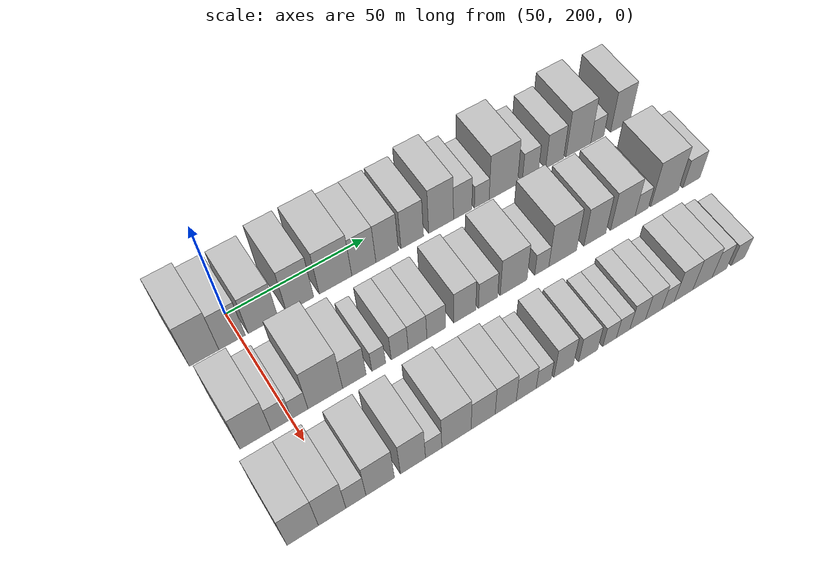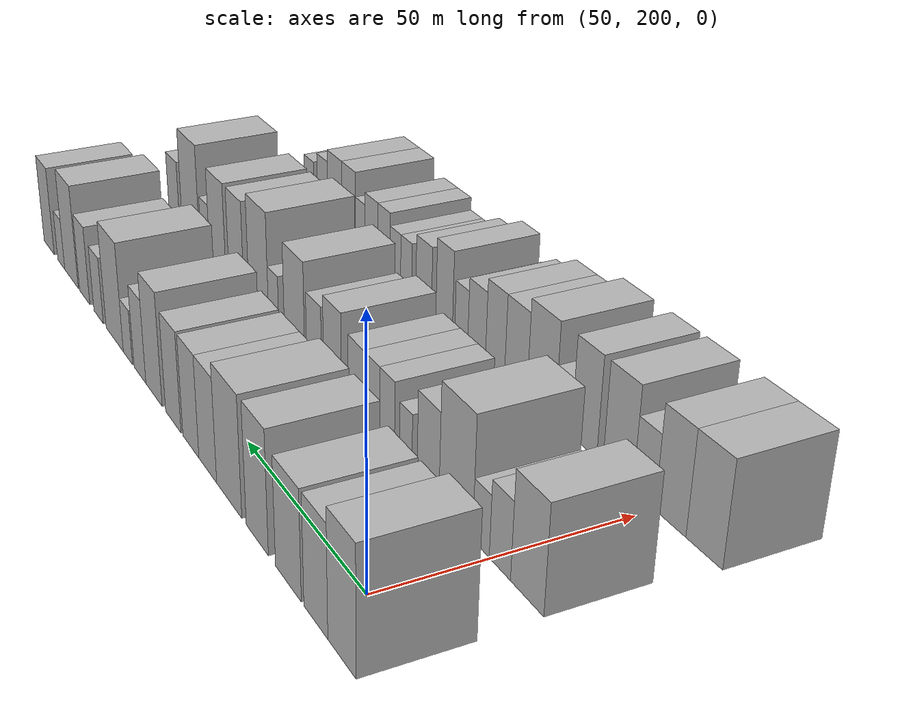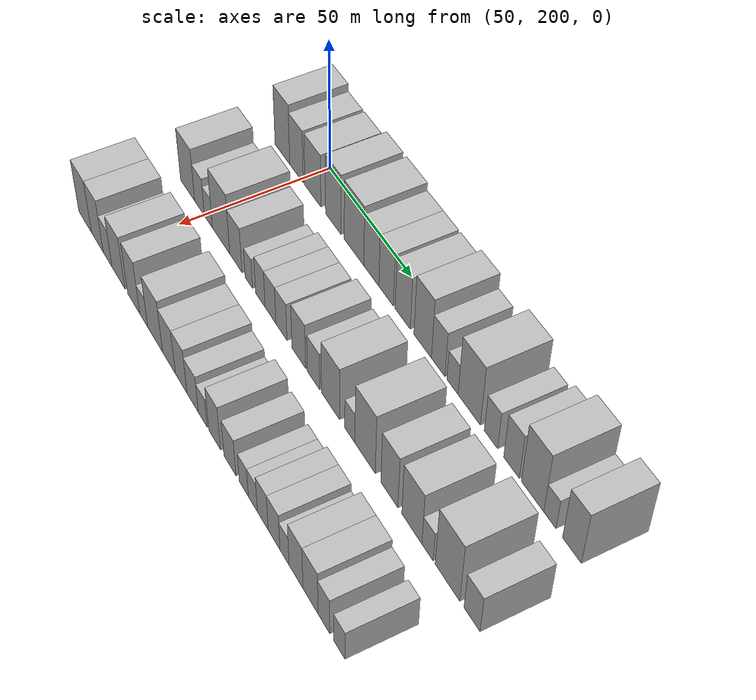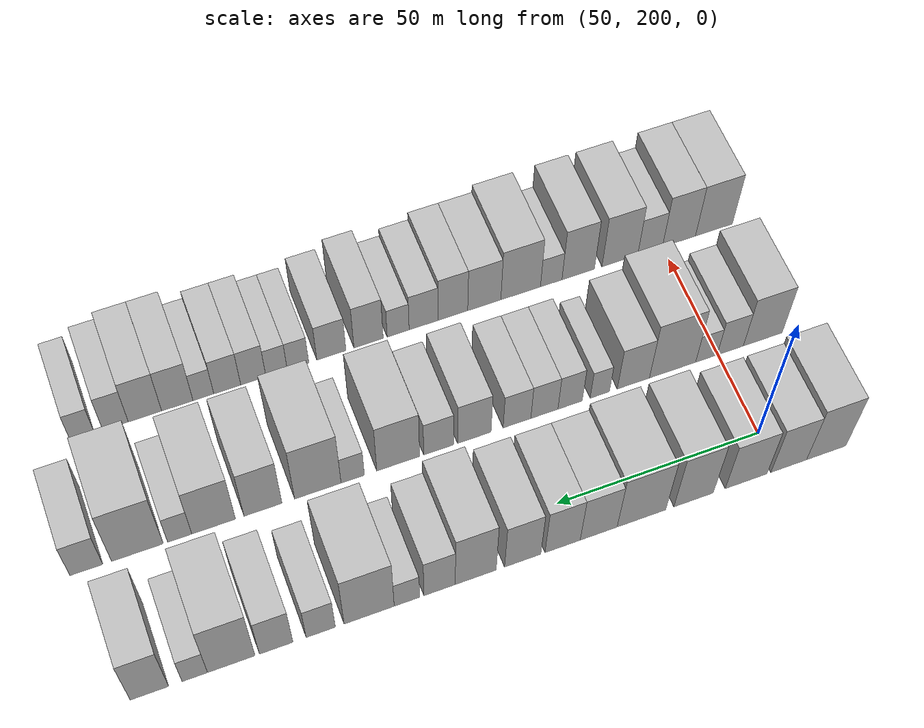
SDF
<sdf version="1.6">
 <world name="default">
  <model name="building_59">
   <static>1</static>
   <pose>50.0000 187.6742 0 0.000000 0.000000 0.000000</pose>
   <link name="link">
    <pose>0 0 12.00 0 0 0</pose>
    <collision name="collision"><geometry><box><size>20.0000 9.9795 24.0000</size></box></geometry></collision>
    <visual name="visual">
     <cast_shadows>0</cast_shadows>
     <geometry><box><size>20.0000 9.9795 24.0000</size></box></geometry>
     <material>
      <script>
       <uri>model://HANNAS_wall/materials/scripts</uri>
       <uri>model://HANNAS_wall/materials/textures</uri>
       <name>vrc/HANNAS_wall</name>
      </script>
     </material>
    </visual>
   </link>
  </model>
  <model name="building_60">
   <static>1</static>
   <pose>50.0000 197.1681 0 0.000000 0.000000 0.000000</pose>
   <link name="link">
    <pose>0 0 10.50 0 0 0</pose>
    <collision name="collision"><geometry><box><size>20.0000 9.0083 21.0000</size></box></geometry></collision>
    <visual name="visual">
     <cast_shadows>0</cast_shadows>
     <geometry><box><size>20.0000 9.0083 21.0000</size></box></geometry>
     <material>
      <script>
       <uri>model://HANNAS_wall/materials/scripts</uri>
       <uri>model://HANNAS_wall/materials/textures</uri>
       <name>vrc/HANNAS_wall</name>
      </script>
     </material>
    </visual>
   </link>
  </model>
  <model name="building_61">
   <static>1</static>
   <pose>50.0000 207.8773 0 0.000000 0.000000 0.000000</pose>
   <link name="link">
    <pose>0 0 10.50 0 0 0</pose>
    <collision name="collision"><geometry><box><size>20.0000 10.4101 21.0000</size></box></geometry></collision>
    <visual name="visual">
     <cast_shadows>0</cast_shadows>
     <geometry><box><size>20.0000 10.4101 21.0000</size></box></geometry>
     <material>
      <script>
       <uri>model://HANNAS_wall/materials/scripts</uri>
       <uri>model://HANNAS_wall/materials/textures</uri>
       <name>vrc/HANNAS_wall</name>
      </script>
     </material>
    </visual>
   </link>
  </model>
  <model name="building_62">
   <static>1</static>
   <pose>50.0000 220.9479 0 0.000000 0.000000 0.000000</pose>
   <link name="link">
    <pose>0 0 12.00 0 0 0</pose>
    <collision name="collision"><geometry><box><size>20.0000 9.7313 24.0000</size></box></geometry></collision>
    <visual name="visual">
     <cast_shadows>0</cast_shadows>
     <geometry><box><size>20.0000 9.7313 24.0000</size></box></geometry>
     <material>
      <script>
       <uri>model://HANNAS_wall/materials/scripts</uri>
       <uri>model://HANNAS_wall/materials/textures</uri>
       <name>vrc/HANNAS_wall</name>
      </script>
     </material>
    </visual>
   </link>
  </model>
  <model name="building_63">
   <static>1</static>
   <pose>50.0000 233.7645 0 0.000000 0.000000 0.000000</pose>
   <link name="link">
    <pose>0 0 12.00 0 0 0</pose>
    <collision name="collision"><geometry><box><size>20.0000 11.9019 24.0000</size></box></geometry></collision>
    <visual name="visual">
     <cast_shadows>0</cast_shadows>
     <geometry><box><size>20.0000 11.9019 24.0000</size></box></geometry>
     <material>
      <script>
       <uri>model://HANNAS_wall/materials/scripts</uri>
       <uri>model://HANNAS_wall/materials/textures</uri>
       <name>vrc/HANNAS_wall</name>
      </script>
     </material>
    </visual>
   </link>
  </model>
  <model name="building_64">
   <static>1</static>
   <pose>50.0000 244.1948 0 0.000000 0.000000 0.000000</pose>
   <link name="link">
    <pose>0 0 10.50 0 0 0</pose>
    <collision name="collision"><geometry><box><size>20.0000 8.9586 21.0000</size></box></geometry></collision>
    <visual name="visual">
     <cast_shadows>0</cast_shadows>
     <geometry><box><size>20.0000 8.9586 21.0000</size></box></geometry>
     <material>
      <script>
       <uri>model://HANNAS_wall/materials/scripts</uri>
       <uri>model://HANNAS_wall/materials/textures</uri>
       <name>vrc/HANNAS_wall</name>
      </script>
     </material>
    </visual>
   </link>
  </model>
  <model name="building_65">
   <static>1</static>
   <pose>50.0000 252.9122 0 0.000000 0.000000 0.000000</pose>
   <link name="link">
    <pose>0 0 10.50 0 0 0</pose>
    <collision name="collision"><geometry><box><size>20.0000 8.4762 21.0000</size></box></geometry></collision>
    <visual name="visual">
     <cast_shadows>0</cast_shadows>
     <geometry><box><size>20.0000 8.4762 21.0000</size></box></geometry>
     <material>
      <script>
       <uri>model://HANNAS_wall/materials/scripts</uri>
       <uri>model://HANNAS_wall/materials/textures</uri>
       <name>vrc/HANNAS_wall</name>
      </script>
     </material>
    </visual>
   </link>
  </model>
  <model name="building_66">
   <static>1</static>
   <pose>50.0000 262.4723 0 0.000000 0.000000 0.000000</pose>
   <link name="link">
    <pose>0 0 10.50 0 0 0</pose>
    <collision name="collision"><geometry><box><size>20.0000 8.6439 21.0000</size></box></geometry></collision>
    <visual name="visual">
     <cast_shadows>0</cast_shadows>
     <geometry><box><size>20.0000 8.6439 21.0000</size></box></geometry>
     <material>
      <script>
       <uri>model://HANNAS_wall/materials/scripts</uri>
       <uri>model://HANNAS_wall/materials/textures</uri>
       <name>vrc/HANNAS_wall</name>
      </script>
     </material>
    </visual>
   </link>
  </model>
  <model name="building_67">
   <static>1</static>
   <pose>50.0000 273.6361 0 0.000000 0.000000 0.000000</pose>
   <link name="link">
    <pose>0 0 12.00 0 0 0</pose>
    <collision name="collision"><geometry><box><size>20.0000 9.6837 24.0000</size></box></geometry></collision>
    <visual name="visual">
     <cast_shadows>0</cast_shadows>
     <geometry><box><size>20.0000 9.6837 24.0000</size></box></geometry>
     <material>
      <script>
       <uri>model://HANNAS_wall/materials/scripts</uri>
       <uri>model://HANNAS_wall/materials/textures</uri>
       <name>vrc/HANNAS_wall</name>
      </script>
     </material>
    </visual>
   </link>
  </model>
  <model name="building_68">
   <static>1</static>
   <pose>50.0000 282.1421 0 0.000000 0.000000 0.000000</pose>
   <link name="link">
    <pose>0 0 9.00 0 0 0</pose>
    <collision name="collision"><geometry><box><size>20.0000 7.3284 18.0000</size></box></geometry></collision>
    <visual name="visual">
     <cast_shadows>0</cast_shadows>
     <geometry><box><size>20.0000 7.3284 18.0000</size></box></geometry>
     <material>
      <script>
       <uri>model://HANNAS_wall/materials/scripts</uri>
       <uri>model://HANNAS_wall/materials/textures</uri>
       <name>vrc/HANNAS_wall</name>
      </script>
     </material>
    </visual>
   </link>
  </model>
  <model name="building_69">
   <static>1</static>
   <pose>50.0000 289.7700 0 0.000000 0.000000 0.000000</pose>
   <link name="link">
    <pose>0 0 6.00 0 0 0</pose>
    <collision name="collision"><geometry><box><size>20.0000 5.9274 12.0000</size></box></geometry></collision>
    <visual name="visual">
     <cast_shadows>0</cast_shadows>
     <geometry><box><size>20.0000 5.9274 12.0000</size></box></geometry>
     <material>
      <script>
       <uri>model://HANNAS_wall/materials/scripts</uri>
       <uri>model://HANNAS_wall/materials/textures</uri>
       <name>vrc/HANNAS_wall</name>
      </script>
     </material>
    </visual>
   </link>
  </model>
  <model name="building_70">
   <static>1</static>
   <pose>50.0000 298.5270 0 0.000000 0.000000 0.000000</pose>
   <link name="link">
    <pose>0 0 12.00 0 0 0</pose>
    <collision name="collision"><geometry><box><size>20.0000 11.5866 24.0000</size></box></geometry></collision>
    <visual name="visual">
     <cast_shadows>0</cast_shadows>
     <geometry><box><size>20.0000 11.5866 24.0000</size></box></geometry>
     <material>
      <script>
       <uri>model://HANNAS_wall/materials/scripts</uri>
       <uri>model://HANNAS_wall/materials/textures</uri>
       <name>vrc/HANNAS_wall</name>
      </script>
     </material>
    </visual>
   </link>
  </model>
  <model name="building_71">
   <static>1</static>
   <pose>50.0000 309.6688 0 0.000000 0.000000 0.000000</pose>
   <link name="link">
    <pose>0 0 7.50 0 0 0</pose>
    <collision name="collision"><geometry><box><size>20.0000 6.6970 15.0000</size></box></geometry></collision>
    <visual name="visual">
     <cast_shadows>0</cast_shadows>
     <geometry><box><size>20.0000 6.6970 15.0000</size></box></geometry>
     <material>
      <script>
       <uri>model://HANNAS_wall/materials/scripts</uri>
       <uri>model://HANNAS_wall/materials/textures</uri>
       <name>vrc/HANNAS_wall</name>
      </script>
     </material>
    </visual>
   </link>
  </model>
  <model name="building_72">
   <static>1</static>
   <pose>50.0000 319.8242 0 0.000000 0.000000 0.000000</pose>
   <link name="link">
    <pose>0 0 9.00 0 0 0</pose>
    <collision name="collision"><geometry><box><size>20.0000 7.6137 18.0000</size></box></geometry></collision>
    <visual name="visual">
     <cast_shadows>0</cast_shadows>
     <geometry><box><size>20.0000 7.6137 18.0000</size></box></geometry>
     <material>
      <script>
       <uri>model://HANNAS_wall/materials/scripts</uri>
       <uri>model://HANNAS_wall/materials/textures</uri>
       <name>vrc/HANNAS_wall</name>
      </script>
     </material>
    </visual>
   </link>
  </model>
  <model name="building_73">
   <static>1</static>
   <pose>50.0000 329.9711 0 0.000000 0.000000 0.000000</pose>
   <link name="link">
    <pose>0 0 12.00 0 0 0</pose>
    <collision name="collision"><geometry><box><size>20.0000 10.6802 24.0000</size></box></geometry></collision>
    <visual name="visual">
     <cast_shadows>0</cast_shadows>
     <geometry><box><size>20.0000 10.6802 24.0000</size></box></geometry>
     <material>
      <script>
       <uri>model://HANNAS_wall/materials/scripts</uri>
       <uri>model://HANNAS_wall/materials/textures</uri>
       <name>vrc/HANNAS_wall</name>
      </script>
     </material>
    </visual>
   </link>
  </model>
  <model name="building_74">
   <static>1</static>
   <pose>50.0000 338.1468 0 0.000000 0.000000 0.000000</pose>
   <link name="link">
    <pose>0 0 6.00 0 0 0</pose>
    <collision name="collision"><geometry><box><size>20.0000 5.6712 12.0000</size></box></geometry></collision>
    <visual name="visual">
     <cast_shadows>0</cast_shadows>
     <geometry><box><size>20.0000 5.6712 12.0000</size></box></geometry>
     <material>
      <script>
       <uri>model://HANNAS_wall/materials/scripts</uri>
       <uri>model://HANNAS_wall/materials/textures</uri>
       <name>vrc/HANNAS_wall</name>
      </script>
     </material>
    </visual>
   </link>
  </model>
  <model name="building_75">
   <static>1</static>
   <pose>50.0000 348.2405 0 0.000000 0.000000 0.000000</pose>
   <link name="link">
    <pose>0 0 10.50 0 0 0</pose>
    <collision name="collision"><geometry><box><size>20.0000 8.5162 21.0000</size></box></geometry></collision>
    <visual name="visual">
     <cast_shadows>0</cast_shadows>
     <geometry><box><size>20.0000 8.5162 21.0000</size></box></geometry>
     <material>
      <script>
       <uri>model://HANNAS_wall/materials/scripts</uri>
       <uri>model://HANNAS_wall/materials/textures</uri>
       <name>vrc/HANNAS_wall</name>
      </script>
     </material>
    </visual>
   </link>
  </model>
  <model name="building_134">
   <static>1</static>
   <pose>82.0000 188.3548 0 0.000000 0.000000 0.000000</pose>
   <link name="link">
    <pose>0 0 10.50 0 0 0</pose>
    <collision name="collision"><geometry><box><size>20.0000 10.1356 21.0000</size></box></geometry></collision>
    <visual name="visual">
     <cast_shadows>0</cast_shadows>
     <geometry><box><size>20.0000 10.1356 21.0000</size></box></geometry>
     <material>
      <script>
       <uri>model://HANNAS_wall/materials/scripts</uri>
       <uri>model://HANNAS_wall/materials/textures</uri>
       <name>vrc/HANNAS_wall</name>
      </script>
     </material>
    </visual>
   </link>
  </model>
  <model name="building_135">
   <static>1</static>
   <pose>82.0000 196.8251 0 0.000000 0.000000 0.000000</pose>
   <link name="link">
    <pose>0 0 7.50 0 0 0</pose>
    <collision name="collision"><geometry><box><size>20.0000 6.8049 15.0000</size></box></geometry></collision>
    <visual name="visual">
     <cast_shadows>0</cast_shadows>
     <geometry><box><size>20.0000 6.8049 15.0000</size></box></geometry>
     <material>
      <script>
       <uri>model://HANNAS_wall/materials/scripts</uri>
       <uri>model://HANNAS_wall/materials/textures</uri>
       <name>vrc/HANNAS_wall</name>
      </script>
     </material>
    </visual>
   </link>
  </model>
  <model name="building_136">
   <static>1</static>
   <pose>82.0000 203.0038 0 0.000000 0.000000 0.000000</pose>
   <link name="link">
    <pose>0 0 6.00 0 0 0</pose>
    <collision name="collision"><geometry><box><size>20.0000 5.5526 12.0000</size></box></geometry></collision>
    <visual name="visual">
     <cast_shadows>0</cast_shadows>
     <geometry><box><size>20.0000 5.5526 12.0000</size></box></geometry>
     <material>
      <script>
       <uri>model://HANNAS_wall/materials/scripts</uri>
       <uri>model://HANNAS_wall/materials/textures</uri>
       <name>vrc/HANNAS_wall</name>
      </script>
     </material>
    </visual>
   </link>
  </model>
  <model name="building_137">
   <static>1</static>
   <pose>82.0000 211.7126 0 0.000000 0.000000 0.000000</pose>
   <link name="link">
    <pose>0 0 12.00 0 0 0</pose>
    <collision name="collision"><geometry><box><size>20.0000 11.8649 24.0000</size></box></geometry></collision>
    <visual name="visual">
     <cast_shadows>0</cast_shadows>
     <geometry><box><size>20.0000 11.8649 24.0000</size></box></geometry>
     <material>
      <script>
       <uri>model://HANNAS_wall/materials/scripts</uri>
       <uri>model://HANNAS_wall/materials/textures</uri>
       <name>vrc/HANNAS_wall</name>
      </script>
     </material>
    </visual>
   </link>
  </model>
  <model name="building_138">
   <static>1</static>
   <pose>82.0000 221.7409 0 0.000000 0.000000 0.000000</pose>
   <link name="link">
    <pose>0 0 9.00 0 0 0</pose>
    <collision name="collision"><geometry><box><size>20.0000 8.1916 18.0000</size></box></geometry></collision>
    <visual name="visual">
     <cast_shadows>0</cast_shadows>
     <geometry><box><size>20.0000 8.1916 18.0000</size></box></geometry>
     <material>
      <script>
       <uri>model://HANNAS_wall/materials/scripts</uri>
       <uri>model://HANNAS_wall/materials/textures</uri>
       <name>vrc/HANNAS_wall</name>
      </script>
     </material>
    </visual>
   </link>
  </model>
  <model name="building_139">
   <static>1</static>
   <pose>82.0000 230.2637 0 0.000000 0.000000 0.000000</pose>
   <link name="link">
    <pose>0 0 6.00 0 0 0</pose>
    <collision name="collision"><geometry><box><size>20.0000 4.8540 12.0000</size></box></geometry></collision>
    <visual name="visual">
     <cast_shadows>0</cast_shadows>
     <geometry><box><size>20.0000 4.8540 12.0000</size></box></geometry>
     <material>
      <script>
       <uri>model://HANNAS_wall/materials/scripts</uri>
       <uri>model://HANNAS_wall/materials/textures</uri>
       <name>vrc/HANNAS_wall</name>
      </script>
     </material>
    </visual>
   </link>
  </model>
  <model name="building_140">
   <static>1</static>
   <pose>82.0000 237.7404 0 0.000000 0.000000 0.000000</pose>
   <link name="link">
    <pose>0 0 7.50 0 0 0</pose>
    <collision name="collision"><geometry><box><size>20.0000 6.0994 15.0000</size></box></geometry></collision>
    <visual name="visual">
     <cast_shadows>0</cast_shadows>
     <geometry><box><size>20.0000 6.0994 15.0000</size></box></geometry>
     <material>
      <script>
       <uri>model://HANNAS_wall/materials/scripts</uri>
       <uri>model://HANNAS_wall/materials/textures</uri>
       <name>vrc/HANNAS_wall</name>
      </script>
     </material>
    </visual>
   </link>
  </model>
  <model name="building_141">
   <static>1</static>
   <pose>82.0000 244.1741 0 0.000000 0.000000 0.000000</pose>
   <link name="link">
    <pose>0 0 7.50 0 0 0</pose>
    <collision name="collision"><geometry><box><size>20.0000 6.7681 15.0000</size></box></geometry></collision>
    <visual name="visual">
     <cast_shadows>0</cast_shadows>
     <geometry><box><size>20.0000 6.7681 15.0000</size></box></geometry>
     <material>
      <script>
       <uri>model://HANNAS_wall/materials/scripts</uri>
       <uri>model://HANNAS_wall/materials/textures</uri>
       <name>vrc/HANNAS_wall</name>
      </script>
     </material>
    </visual>
   </link>
  </model>
  <model name="building_142">
   <static>1</static>
   <pose>82.0000 250.9999 0 0.000000 0.000000 0.000000</pose>
   <link name="link">
    <pose>0 0 7.50 0 0 0</pose>
    <collision name="collision"><geometry><box><size>20.0000 6.8834 15.0000</size></box></geometry></collision>
    <visual name="visual">
     <cast_shadows>0</cast_shadows>
     <geometry><box><size>20.0000 6.8834 15.0000</size></box></geometry>
     <material>
      <script>
       <uri>model://HANNAS_wall/materials/scripts</uri>
       <uri>model://HANNAS_wall/materials/textures</uri>
       <name>vrc/HANNAS_wall</name>
      </script>
     </material>
    </visual>
   </link>
  </model>
  <model name="building_143">
   <static>1</static>
   <pose>82.0000 261.5629 0 0.000000 0.000000 0.000000</pose>
   <link name="link">
    <pose>0 0 9.00 0 0 0</pose>
    <collision name="collision"><geometry><box><size>20.0000 8.2426 18.0000</size></box></geometry></collision>
    <visual name="visual">
     <cast_shadows>0</cast_shadows>
     <geometry><box><size>20.0000 8.2426 18.0000</size></box></geometry>
     <material>
      <script>
       <uri>model://HANNAS_wall/materials/scripts</uri>
       <uri>model://HANNAS_wall/materials/textures</uri>
       <name>vrc/HANNAS_wall</name>
      </script>
     </material>
    </visual>
   </link>
  </model>
  <model name="building_144">
   <static>1</static>
   <pose>82.0000 270.3151 0 0.000000 0.000000 0.000000</pose>
   <link name="link">
    <pose>0 0 7.50 0 0 0</pose>
    <collision name="collision"><geometry><box><size>20.0000 7.2616 15.0000</size></box></geometry></collision>
    <visual name="visual">
     <cast_shadows>0</cast_shadows>
     <geometry><box><size>20.0000 7.2616 15.0000</size></box></geometry>
     <material>
      <script>
       <uri>model://HANNAS_wall/materials/scripts</uri>
       <uri>model://HANNAS_wall/materials/textures</uri>
       <name>vrc/HANNAS_wall</name>
      </script>
     </material>
    </visual>
   </link>
  </model>
  <model name="building_145">
   <static>1</static>
   <pose>82.0000 280.1358 0 0.000000 0.000000 0.000000</pose>
   <link name="link">
    <pose>0 0 10.50 0 0 0</pose>
    <collision name="collision"><geometry><box><size>20.0000 10.3798 21.0000</size></box></geometry></collision>
    <visual name="visual">
     <cast_shadows>0</cast_shadows>
     <geometry><box><size>20.0000 10.3798 21.0000</size></box></geometry>
     <material>
      <script>
       <uri>model://HANNAS_wall/materials/scripts</uri>
       <uri>model://HANNAS_wall/materials/textures</uri>
       <name>vrc/HANNAS_wall</name>
      </script>
     </material>
    </visual>
   </link>
  </model>
  <model name="building_146">
   <static>1</static>
   <pose>82.0000 291.1173 0 0.000000 0.000000 0.000000</pose>
   <link name="link">
    <pose>0 0 6.00 0 0 0</pose>
    <collision name="collision"><geometry><box><size>20.0000 5.5832 12.0000</size></box></geometry></collision>
    <visual name="visual">
     <cast_shadows>0</cast_shadows>
     <geometry><box><size>20.0000 5.5832 12.0000</size></box></geometry>
     <material>
      <script>
       <uri>model://HANNAS_wall/materials/scripts</uri>
       <uri>model://HANNAS_wall/materials/textures</uri>
       <name>vrc/HANNAS_wall</name>
      </script>
     </material>
    </visual>
   </link>
  </model>
  <model name="building_147">
   <static>1</static>
   <pose>82.0000 299.4503 0 0.000000 0.000000 0.000000</pose>
   <link name="link">
    <pose>0 0 12.00 0 0 0</pose>
    <collision name="collision"><geometry><box><size>20.0000 11.0827 24.0000</size></box></geometry></collision>
    <visual name="visual">
     <cast_shadows>0</cast_shadows>
     <geometry><box><size>20.0000 11.0827 24.0000</size></box></geometry>
     <material>
      <script>
       <uri>model://HANNAS_wall/materials/scripts</uri>
       <uri>model://HANNAS_wall/materials/textures</uri>
       <name>vrc/HANNAS_wall</name>
      </script>
     </material>
    </visual>
   </link>
  </model>
  <model name="building_148">
   <static>1</static>
   <pose>82.0000 312.4679 0 0.000000 0.000000 0.000000</pose>
   <link name="link">
    <pose>0 0 10.50 0 0 0</pose>
    <collision name="collision"><geometry><box><size>20.0000 8.9526 21.0000</size></box></geometry></collision>
    <visual name="visual">
     <cast_shadows>0</cast_shadows>
     <geometry><box><size>20.0000 8.9526 21.0000</size></box></geometry>
     <material>
      <script>
       <uri>model://HANNAS_wall/materials/scripts</uri>
       <uri>model://HANNAS_wall/materials/textures</uri>
       <name>vrc/HANNAS_wall</name>
      </script>
     </material>
    </visual>
   </link>
  </model>
  <model name="building_149">
   <static>1</static>
   <pose>82.0000 324.0565 0 0.000000 0.000000 0.000000</pose>
   <link name="link">
    <pose>0 0 10.50 0 0 0</pose>
    <collision name="collision"><geometry><box><size>20.0000 10.2247 21.0000</size></box></geometry></collision>
    <visual name="visual">
     <cast_shadows>0</cast_shadows>
     <geometry><box><size>20.0000 10.2247 21.0000</size></box></geometry>
     <material>
      <script>
       <uri>model://HANNAS_wall/materials/scripts</uri>
       <uri>model://HANNAS_wall/materials/textures</uri>
       <name>vrc/HANNAS_wall</name>
      </script>
     </material>
    </visual>
   </link>
  </model>
  <model name="building_150">
   <static>1</static>
   <pose>82.0000 331.9608 0 0.000000 0.000000 0.000000</pose>
   <link name="link">
    <pose>0 0 6.00 0 0 0</pose>
    <collision name="collision"><geometry><box><size>20.0000 5.5839 12.0000</size></box></geometry></collision>
    <visual name="visual">
     <cast_shadows>0</cast_shadows>
     <geometry><box><size>20.0000 5.5839 12.0000</size></box></geometry>
     <material>
      <script>
       <uri>model://HANNAS_wall/materials/scripts</uri>
       <uri>model://HANNAS_wall/materials/textures</uri>
       <name>vrc/HANNAS_wall</name>
      </script>
     </material>
    </visual>
   </link>
  </model>
  <model name="building_151">
   <static>1</static>
   <pose>82.0000 341.7068 0 0.000000 0.000000 0.000000</pose>
   <link name="link">
    <pose>0 0 12.00 0 0 0</pose>
    <collision name="collision"><geometry><box><size>20.0000 11.9080 24.0000</size></box></geometry></collision>
    <visual name="visual">
     <cast_shadows>0</cast_shadows>
     <geometry><box><size>20.0000 11.9080 24.0000</size></box></geometry>
     <material>
      <script>
       <uri>model://HANNAS_wall/materials/scripts</uri>
       <uri>model://HANNAS_wall/materials/textures</uri>
       <name>vrc/HANNAS_wall</name>
      </script>
     </material>
    </visual>
   </link>
  </model>
  <model name="building_152">
   <static>1</static>
   <pose>82.0000 353.4043 0 0.000000 0.000000 0.000000</pose>
   <link name="link">
    <pose>0 0 7.50 0 0 0</pose>
    <collision name="collision"><geometry><box><size>20.0000 7.4869 15.0000</size></box></geometry></collision>
    <visual name="visual">
     <cast_shadows>0</cast_shadows>
     <geometry><box><size>20.0000 7.4869 15.0000</size></box></geometry>
     <material>
      <script>
       <uri>model://HANNAS_wall/materials/scripts</uri>
       <uri>model://HANNAS_wall/materials/textures</uri>
       <name>vrc/HANNAS_wall</name>
      </script>
     </material>
    </visual>
   </link>
  </model>
  <model name="building_211">
   <static>1</static>
   <pose>114.0000 186.2091 0 0.000000 0.000000 0.000000</pose>
   <link name="link">
    <pose>0 0 10.50 0 0 0</pose>
    <collision name="collision"><geometry><box><size>20.0000 9.9215 21.0000</size></box></geometry></collision>
    <visual name="visual">
     <cast_shadows>0</cast_shadows>
     <geometry><box><size>20.0000 9.9215 21.0000</size></box></geometry>
     <material>
      <script>
       <uri>model://HANNAS_wall/materials/scripts</uri>
       <uri>model://HANNAS_wall/materials/textures</uri>
       <name>vrc/HANNAS_wall</name>
      </script>
     </material>
    </visual>
   </link>
  </model>
  <model name="building_212">
   <static>1</static>
   <pose>114.0000 195.5900 0 0.000000 0.000000 0.000000</pose>
   <link name="link">
    <pose>0 0 10.50 0 0 0</pose>
    <collision name="collision"><geometry><box><size>20.0000 8.8402 21.0000</size></box></geometry></collision>
    <visual name="visual">
     <cast_shadows>0</cast_shadows>
     <geometry><box><size>20.0000 8.8402 21.0000</size></box></geometry>
     <material>
      <script>
       <uri>model://HANNAS_wall/materials/scripts</uri>
       <uri>model://HANNAS_wall/materials/textures</uri>
       <name>vrc/HANNAS_wall</name>
      </script>
     </material>
    </visual>
   </link>
  </model>
  <model name="building_213">
   <static>1</static>
   <pose>114.0000 203.2948 0 0.000000 0.000000 0.000000</pose>
   <link name="link">
    <pose>0 0 7.50 0 0 0</pose>
    <collision name="collision"><geometry><box><size>20.0000 6.5695 15.0000</size></box></geometry></collision>
    <visual name="visual">
     <cast_shadows>0</cast_shadows>
     <geometry><box><size>20.0000 6.5695 15.0000</size></box></geometry>
     <material>
      <script>
       <uri>model://HANNAS_wall/materials/scripts</uri>
       <uri>model://HANNAS_wall/materials/textures</uri>
       <name>vrc/HANNAS_wall</name>
      </script>
     </material>
    </visual>
   </link>
  </model>
  <model name="building_214">
   <static>1</static>
   <pose>114.0000 211.2944 0 0.000000 0.000000 0.000000</pose>
   <link name="link">
    <pose>0 0 10.50 0 0 0</pose>
    <collision name="collision"><geometry><box><size>20.0000 9.4296 21.0000</size></box></geometry></collision>
    <visual name="visual">
     <cast_shadows>0</cast_shadows>
     <geometry><box><size>20.0000 9.4296 21.0000</size></box></geometry>
     <material>
      <script>
       <uri>model://HANNAS_wall/materials/scripts</uri>
       <uri>model://HANNAS_wall/materials/textures</uri>
       <name>vrc/HANNAS_wall</name>
      </script>
     </material>
    </visual>
   </link>
  </model>
  <model name="building_215">
   <static>1</static>
   <pose>114.0000 222.2550 0 0.000000 0.000000 0.000000</pose>
   <link name="link">
    <pose>0 0 10.50 0 0 0</pose>
    <collision name="collision"><geometry><box><size>20.0000 8.4916 21.0000</size></box></geometry></collision>
    <visual name="visual">
     <cast_shadows>0</cast_shadows>
     <geometry><box><size>20.0000 8.4916 21.0000</size></box></geometry>
     <material>
      <script>
       <uri>model://HANNAS_wall/materials/scripts</uri>
       <uri>model://HANNAS_wall/materials/textures</uri>
       <name>vrc/HANNAS_wall</name>
      </script>
     </material>
    </visual>
   </link>
  </model>
  <model name="building_216">
   <static>1</static>
   <pose>114.0000 229.2994 0 0.000000 0.000000 0.000000</pose>
   <link name="link">
    <pose>0 0 6.00 0 0 0</pose>
    <collision name="collision"><geometry><box><size>20.0000 5.5972 12.0000</size></box></geometry></collision>
    <visual name="visual">
     <cast_shadows>0</cast_shadows>
     <geometry><box><size>20.0000 5.5972 12.0000</size></box></geometry>
     <material>
      <script>
       <uri>model://HANNAS_wall/materials/scripts</uri>
       <uri>model://HANNAS_wall/materials/textures</uri>
       <name>vrc/HANNAS_wall</name>
      </script>
     </material>
    </visual>
   </link>
  </model>
  <model name="building_217">
   <static>1</static>
   <pose>114.0000 237.2164 0 0.000000 0.000000 0.000000</pose>
   <link name="link">
    <pose>0 0 10.50 0 0 0</pose>
    <collision name="collision"><geometry><box><size>20.0000 10.2370 21.0000</size></box></geometry></collision>
    <visual name="visual">
     <cast_shadows>0</cast_shadows>
     <geometry><box><size>20.0000 10.2370 21.0000</size></box></geometry>
     <material>
      <script>
       <uri>model://HANNAS_wall/materials/scripts</uri>
       <uri>model://HANNAS_wall/materials/textures</uri>
       <name>vrc/HANNAS_wall</name>
      </script>
     </material>
    </visual>
   </link>
  </model>
  <model name="building_218">
   <static>1</static>
   <pose>114.0000 246.5915 0 0.000000 0.000000 0.000000</pose>
   <link name="link">
    <pose>0 0 9.00 0 0 0</pose>
    <collision name="collision"><geometry><box><size>20.0000 8.5132 18.0000</size></box></geometry></collision>
    <visual name="visual">
     <cast_shadows>0</cast_shadows>
     <geometry><box><size>20.0000 8.5132 18.0000</size></box></geometry>
     <material>
      <script>
       <uri>model://HANNAS_wall/materials/scripts</uri>
       <uri>model://HANNAS_wall/materials/textures</uri>
       <name>vrc/HANNAS_wall</name>
      </script>
     </material>
    </visual>
   </link>
  </model>
  <model name="building_219">
   <static>1</static>
   <pose>114.0000 254.6464 0 0.000000 0.000000 0.000000</pose>
   <link name="link">
    <pose>0 0 9.00 0 0 0</pose>
    <collision name="collision"><geometry><box><size>20.0000 7.5967 18.0000</size></box></geometry></collision>
    <visual name="visual">
     <cast_shadows>0</cast_shadows>
     <geometry><box><size>20.0000 7.5967 18.0000</size></box></geometry>
     <material>
      <script>
       <uri>model://HANNAS_wall/materials/scripts</uri>
       <uri>model://HANNAS_wall/materials/textures</uri>
       <name>vrc/HANNAS_wall</name>
      </script>
     </material>
    </visual>
   </link>
  </model>
  <model name="building_220">
   <static>1</static>
   <pose>114.0000 262.0879 0 0.000000 0.000000 0.000000</pose>
   <link name="link">
    <pose>0 0 7.50 0 0 0</pose>
    <collision name="collision"><geometry><box><size>20.0000 7.2862 15.0000</size></box></geometry></collision>
    <visual name="visual">
     <cast_shadows>0</cast_shadows>
     <geometry><box><size>20.0000 7.2862 15.0000</size></box></geometry>
     <material>
      <script>
       <uri>model://HANNAS_wall/materials/scripts</uri>
       <uri>model://HANNAS_wall/materials/textures</uri>
       <name>vrc/HANNAS_wall</name>
      </script>
     </material>
    </visual>
   </link>
  </model>
  <model name="building_221">
   <static>1</static>
   <pose>114.0000 268.5014 0 0.000000 0.000000 0.000000</pose>
   <link name="link">
    <pose>0 0 6.00 0 0 0</pose>
    <collision name="collision"><geometry><box><size>20.0000 5.5408 12.0000</size></box></geometry></collision>
    <visual name="visual">
     <cast_shadows>0</cast_shadows>
     <geometry><box><size>20.0000 5.5408 12.0000</size></box></geometry>
     <material>
      <script>
       <uri>model://HANNAS_wall/materials/scripts</uri>
       <uri>model://HANNAS_wall/materials/textures</uri>
       <name>vrc/HANNAS_wall</name>
      </script>
     </material>
    </visual>
   </link>
  </model>
  <model name="building_222">
   <static>1</static>
   <pose>114.0000 275.9357 0 0.000000 0.000000 0.000000</pose>
   <link name="link">
    <pose>0 0 9.00 0 0 0</pose>
    <collision name="collision"><geometry><box><size>20.0000 7.3279 18.0000</size></box></geometry></collision>
    <visual name="visual">
     <cast_shadows>0</cast_shadows>
     <geometry><box><size>20.0000 7.3279 18.0000</size></box></geometry>
     <material>
      <script>
       <uri>model://HANNAS_wall/materials/scripts</uri>
       <uri>model://HANNAS_wall/materials/textures</uri>
       <name>vrc/HANNAS_wall</name>
      </script>
     </material>
    </visual>
   </link>
  </model>
  <model name="building_223">
   <static>1</static>
   <pose>114.0000 285.2197 0 0.000000 0.000000 0.000000</pose>
   <link name="link">
    <pose>0 0 7.50 0 0 0</pose>
    <collision name="collision"><geometry><box><size>20.0000 7.2400 15.0000</size></box></geometry></collision>
    <visual name="visual">
     <cast_shadows>0</cast_shadows>
     <geometry><box><size>20.0000 7.2400 15.0000</size></box></geometry>
     <material>
      <script>
       <uri>model://HANNAS_wall/materials/scripts</uri>
       <uri>model://HANNAS_wall/materials/textures</uri>
       <name>vrc/HANNAS_wall</name>
      </script>
     </material>
    </visual>
   </link>
  </model>
  <model name="building_224">
   <static>1</static>
   <pose>114.0000 293.4949 0 0.000000 0.000000 0.000000</pose>
   <link name="link">
    <pose>0 0 6.00 0 0 0</pose>
    <collision name="collision"><geometry><box><size>20.0000 5.3105 12.0000</size></box></geometry></collision>
    <visual name="visual">
     <cast_shadows>0</cast_shadows>
     <geometry><box><size>20.0000 5.3105 12.0000</size></box></geometry>
     <material>
      <script>
       <uri>model://HANNAS_wall/materials/scripts</uri>
       <uri>model://HANNAS_wall/materials/textures</uri>
       <name>vrc/HANNAS_wall</name>
      </script>
     </material>
    </visual>
   </link>
  </model>
  <model name="building_225">
   <static>1</static>
   <pose>114.0000 298.7646 0 0.000000 0.000000 0.000000</pose>
   <link name="link">
    <pose>0 0 6.00 0 0 0</pose>
    <collision name="collision"><geometry><box><size>20.0000 5.2288 12.0000</size></box></geometry></collision>
    <visual name="visual">
     <cast_shadows>0</cast_shadows>
     <geometry><box><size>20.0000 5.2288 12.0000</size></box></geometry>
     <material>
      <script>
       <uri>model://HANNAS_wall/materials/scripts</uri>
       <uri>model://HANNAS_wall/materials/textures</uri>
       <name>vrc/HANNAS_wall</name>
      </script>
     </material>
    </visual>
   </link>
  </model>
  <model name="building_226">
   <static>1</static>
   <pose>114.0000 304.4701 0 0.000000 0.000000 0.000000</pose>
   <link name="link">
    <pose>0 0 7.50 0 0 0</pose>
    <collision name="collision"><geometry><box><size>20.0000 6.1822 15.0000</size></box></geometry></collision>
    <visual name="visual">
     <cast_shadows>0</cast_shadows>
     <geometry><box><size>20.0000 6.1822 15.0000</size></box></geometry>
     <material>
      <script>
       <uri>model://HANNAS_wall/materials/scripts</uri>
       <uri>model://HANNAS_wall/materials/textures</uri>
       <name>vrc/HANNAS_wall</name>
      </script>
     </material>
    </visual>
   </link>
  </model>
  <model name="building_227">
   <static>1</static>
   <pose>114.0000 310.8526 0 0.000000 0.000000 0.000000</pose>
   <link name="link">
    <pose>0 0 7.50 0 0 0</pose>
    <collision name="collision"><geometry><box><size>20.0000 6.5828 15.0000</size></box></geometry></collision>
    <visual name="visual">
     <cast_shadows>0</cast_shadows>
     <geometry><box><size>20.0000 6.5828 15.0000</size></box></geometry>
     <material>
      <script>
       <uri>model://HANNAS_wall/materials/scripts</uri>
       <uri>model://HANNAS_wall/materials/textures</uri>
       <name>vrc/HANNAS_wall</name>
      </script>
     </material>
    </visual>
   </link>
  </model>
  <model name="building_228">
   <static>1</static>
   <pose>114.0000 316.6651 0 0.000000 0.000000 0.000000</pose>
   <link name="link">
    <pose>0 0 6.00 0 0 0</pose>
    <collision name="collision"><geometry><box><size>20.0000 5.0422 12.0000</size></box></geometry></collision>
    <visual name="visual">
     <cast_shadows>0</cast_shadows>
     <geometry><box><size>20.0000 5.0422 12.0000</size></box></geometry>
     <material>
      <script>
       <uri>model://HANNAS_wall/materials/scripts</uri>
       <uri>model://HANNAS_wall/materials/textures</uri>
       <name>vrc/HANNAS_wall</name>
      </script>
     </material>
    </visual>
   </link>
  </model>
  <model name="building_229">
   <static>1</static>
   <pose>114.0000 322.9648 0 0.000000 0.000000 0.000000</pose>
   <link name="link">
    <pose>0 0 9.00 0 0 0</pose>
    <collision name="collision"><geometry><box><size>20.0000 7.5573 18.0000</size></box></geometry></collision>
    <visual name="visual">
     <cast_shadows>0</cast_shadows>
     <geometry><box><size>20.0000 7.5573 18.0000</size></box></geometry>
     <material>
      <script>
       <uri>model://HANNAS_wall/materials/scripts</uri>
       <uri>model://HANNAS_wall/materials/textures</uri>
       <name>vrc/HANNAS_wall</name>
      </script>
     </material>
    </visual>
   </link>
  </model>
  <model name="building_230">
   <static>1</static>
   <pose>114.0000 330.7410 0 0.000000 0.000000 0.000000</pose>
   <link name="link">
    <pose>0 0 9.00 0 0 0</pose>
    <collision name="collision"><geometry><box><size>20.0000 7.9949 18.0000</size></box></geometry></collision>
    <visual name="visual">
     <cast_shadows>0</cast_shadows>
     <geometry><box><size>20.0000 7.9949 18.0000</size></box></geometry>
     <material>
      <script>
       <uri>model://HANNAS_wall/materials/scripts</uri>
       <uri>model://HANNAS_wall/materials/textures</uri>
       <name>vrc/HANNAS_wall</name>
      </script>
     </material>
    </visual>
   </link>
  </model>
  <model name="building_231">
   <static>1</static>
   <pose>114.0000 337.7787 0 0.000000 0.000000 0.000000</pose>
   <link name="link">
    <pose>0 0 7.50 0 0 0</pose>
    <collision name="collision"><geometry><box><size>20.0000 6.0805 15.0000</size></box></geometry></collision>
    <visual name="visual">
     <cast_shadows>0</cast_shadows>
     <geometry><box><size>20.0000 6.0805 15.0000</size></box></geometry>
     <material>
      <script>
       <uri>model://HANNAS_wall/materials/scripts</uri>
       <uri>model://HANNAS_wall/materials/textures</uri>
       <name>vrc/HANNAS_wall</name>
      </script>
     </material>
    </visual>
   </link>
  </model>
  <model name="building_232">
   <static>1</static>
   <pose>114.0000 345.6649 0 0.000000 0.000000 0.000000</pose>
   <link name="link">
    <pose>0 0 6.00 0 0 0</pose>
    <collision name="collision"><geometry><box><size>20.0000 5.6919 12.0000</size></box></geometry></collision>
    <visual name="visual">
     <cast_shadows>0</cast_shadows>
     <geometry><box><size>20.0000 5.6919 12.0000</size></box></geometry>
     <material>
      <script>
       <uri>model://HANNAS_wall/materials/scripts</uri>
       <uri>model://HANNAS_wall/materials/textures</uri>
       <name>vrc/HANNAS_wall</name>
      </script>
     </material>
    </visual>
   </link>
  </model>
 </world>
</sdf>
